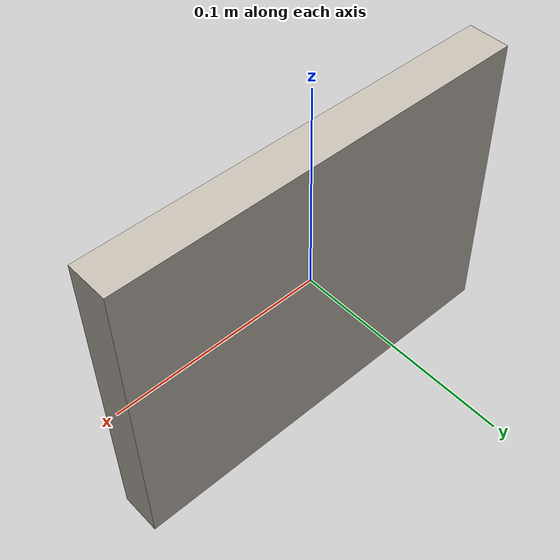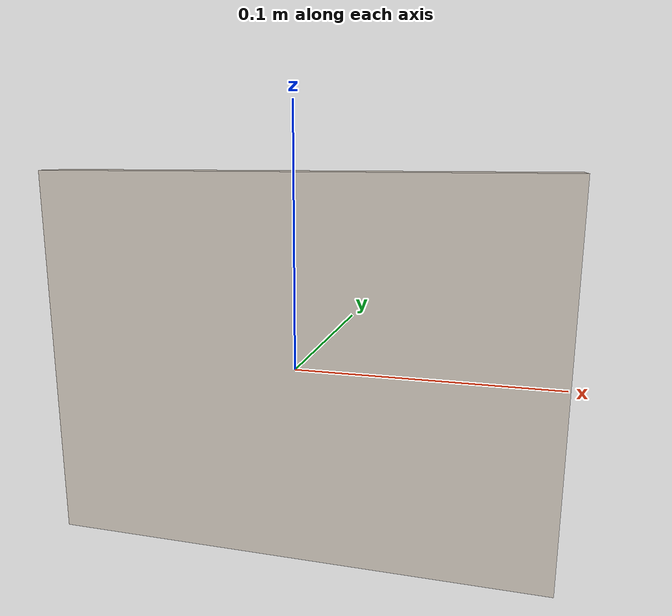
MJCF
<mujoco>
    <compiler angle="radian" inertiafromgeom="auto" inertiagrouprange="4 5"/>
    <asset>
        <texture name="T_wallbrick" type="cube" file="../textures/brick1.png"/>
        <material name="wall_col" rgba="0.3 0.3 1.0 0.5" shininess="0" specular="0"/>
        <material name="wall_brick" texture="T_wallbrick" shininess="1" reflectance=".7" specular=".5"/>
    </asset>
    <default>
        <default class="wall_base">
            <joint armature="0.001" damping="2" limited="true"/>
            <geom conaffinity="0" contype="0" group="1" type="mesh"/>
            <default class="wall_viz">
                <geom condim="4" type="mesh"/>
            </default>
            <default class="wall_col">
                <geom conaffinity="1" condim="3" contype="0" group="4" material="wall_col" solimp="0.99 0.99 0.01" solref="0.01 1"/>
            </default>
        </default>
    </default>

    <worldbody>
        <body name="wall" pos="0 0 0">
            <body childclass="wall_base">
                <geom material="wall_brick" type="box" size="0.1 0.01 0.075" pos="0 0 0"/>
                <geom class="wall_col" type="box" size="0.1 0.01 0.075" pos="0 0 0" mass="1"/>
            </body>
        </body>
    </worldbody>

</mujoco>
